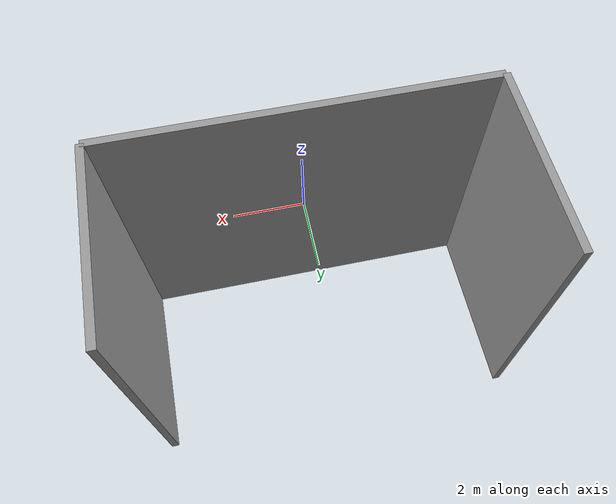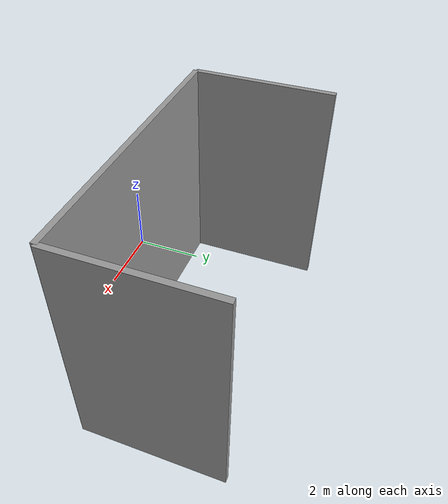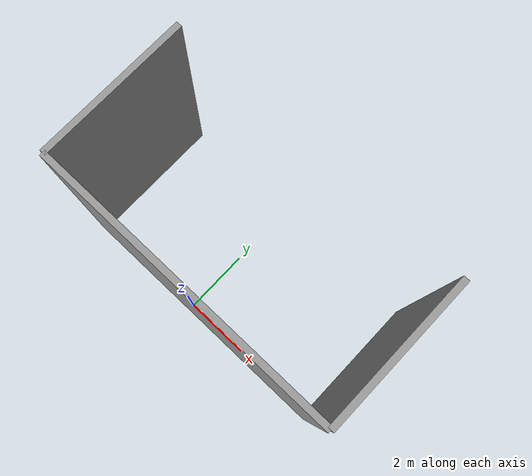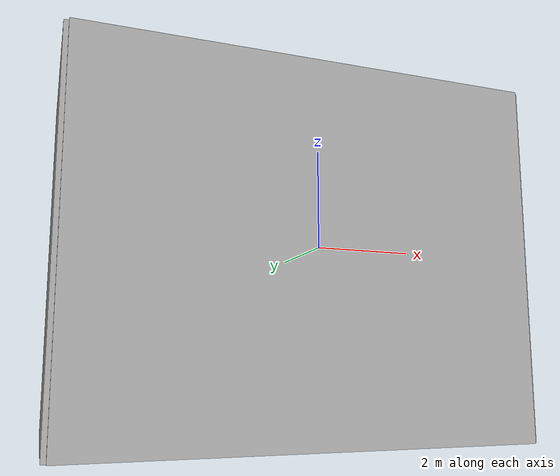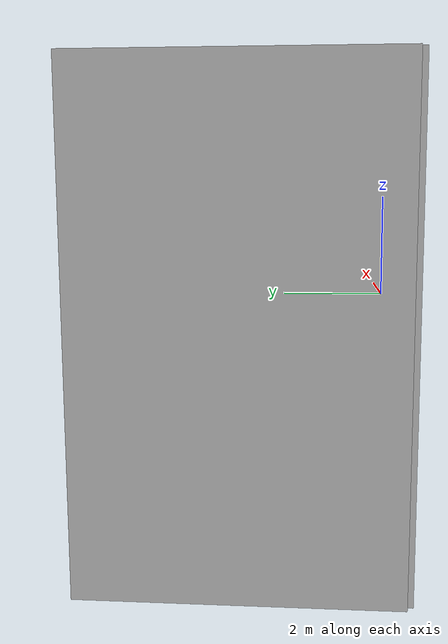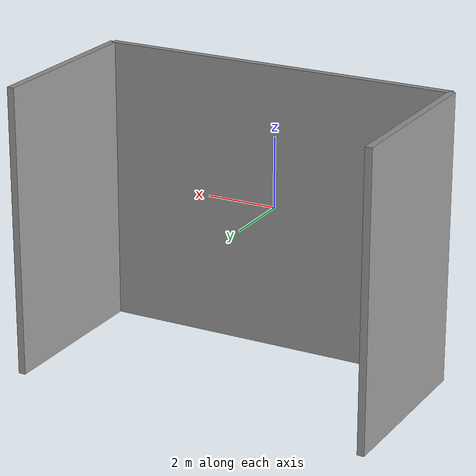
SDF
<?xml version="1.0" ?>
<sdf version="1.5">
  <model name="Armada_Wall1">
    <static>true</static>
    <link name="Wall1">
      <pose>0 0 0 0 0 0</pose>
      <collision name="collision">
        <geometry>
          <box>
            <size>10 0.2 8</size>
          </box>
        </geometry>
      </collision>
      <visual name="visual">
        <cast_shadows>false</cast_shadows>
        <geometry>
          <box>
            <size>10 0.2 8</size>
          </box>
        </geometry>
        <material>
          <script>
            <uri>model://Armada_Wall2/materials/scripts</uri>
            <uri>model://Armada_Wall2/materials/textures</uri>
            <name>vrc/grey_wall</name>
          </script>
        </material>
      </visual>
    </link>
    <link name="Wall2">
      <pose>5 2.5 0 0 0 1.5707</pose>
      <collision name="collision">
        <geometry>
          <box>
            <size>5 0.2 8</size>
          </box>
        </geometry>
      </collision>
      <visual name="visual">
        <cast_shadows>false</cast_shadows>
        <geometry>
          <box>
            <size>5 0.2 8</size>
          </box>
        </geometry>
        <material>
          <script>
            <uri>model://Armada_Wall2/materials/scripts</uri>
            <uri>model://Armada_Wall2/materials/textures</uri>
            <name>vrc/grey_wall</name>
          </script>
        </material>
      </visual>
    </link>
    <link name="Wall3">
      <pose>-5 2.5 0 0 0 -1.5707</pose>
      <collision name="collision">
        <geometry>
          <box>
            <size>5 0.2 8</size>
          </box>
        </geometry>
      </collision>
      <visual name="visual">
        <cast_shadows>false</cast_shadows>
        <geometry>
          <box>
            <size>5 0.2 8</size>
          </box>
        </geometry>
        <material>
          <script>
            <uri>model://Armada_Wall2/materials/scripts</uri>
            <uri>model://Armada_Wall2/materials/textures</uri>
            <name>vrc/grey_wall</name>
          </script>
        </material>
      </visual>
    </link>
  </model>
</sdf>
